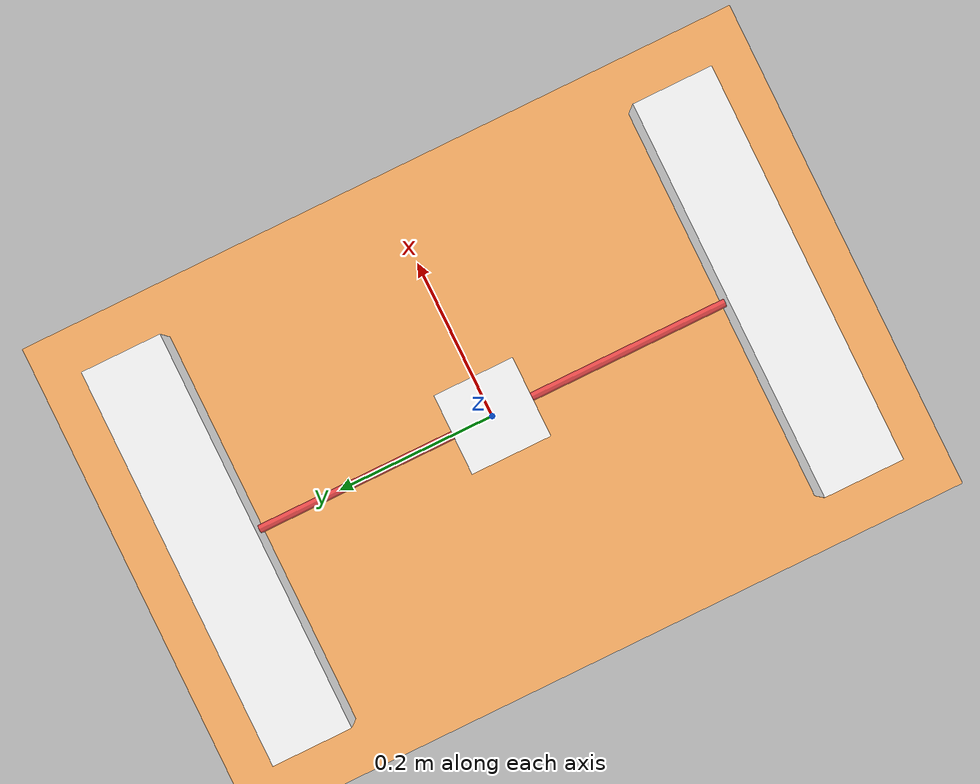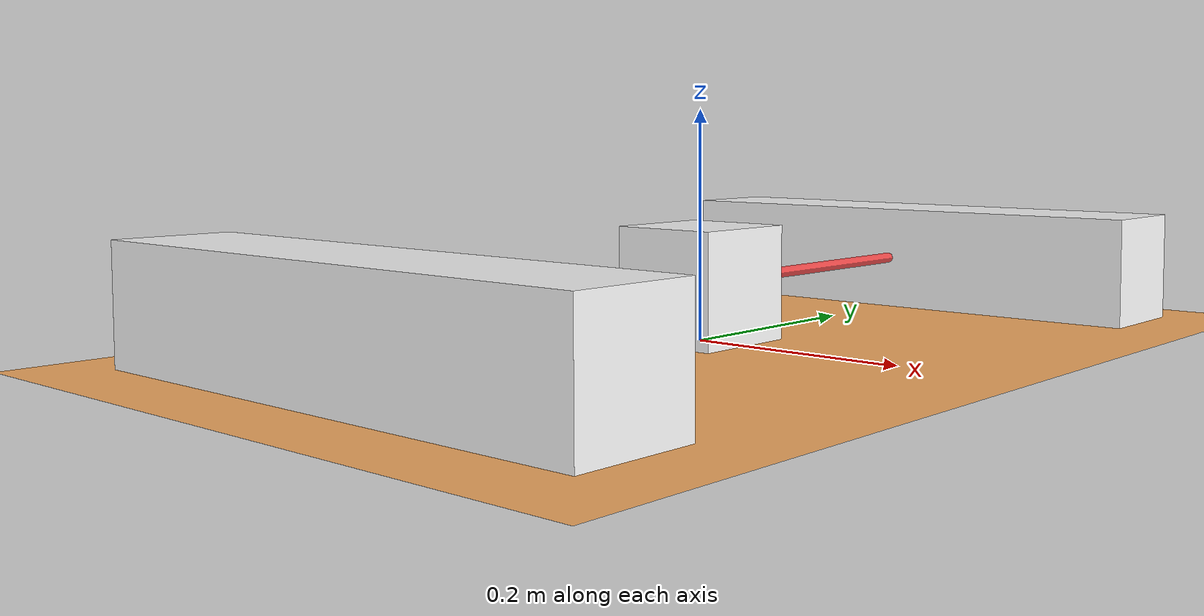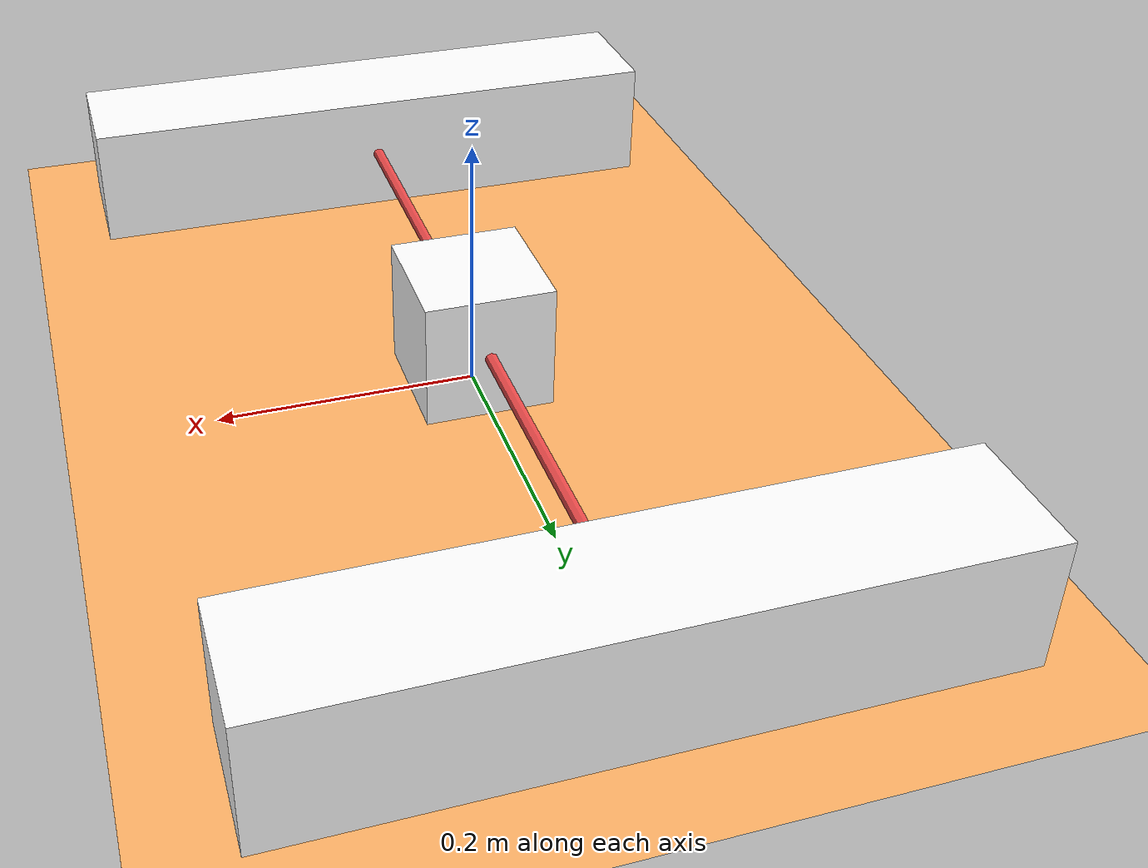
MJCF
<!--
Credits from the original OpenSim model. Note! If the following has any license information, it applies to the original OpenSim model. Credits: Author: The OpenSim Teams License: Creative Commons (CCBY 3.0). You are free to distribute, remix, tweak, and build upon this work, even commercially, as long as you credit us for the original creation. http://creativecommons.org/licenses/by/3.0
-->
<mujoco model="template">
  <!-- This model has been converted from an OpenSim model. Model conversion by MyoConverter https://github.com/MyoHub/myoconverter. This model is licensed under Apache 2.0. -->
  <!-- Note: inertiagrouprange="0 1" means that groups 0-1 will be used to infer masses/inertias, and groups 2-5 are
  only for visualisation (e.g. wrapping objects) !-->
  <compiler inertiafromgeom="auto" angle="radian" balanceinertia="true" boundmass="0.001" boundinertia="0.001" inertiagrouprange="0 1">
    <lengthrange inttotal="50" useexisting="true"/>
  </compiler>
  <option collision="predefined"/>
  <visual>
    <scale framelength="0.5" framewidth="0.01"/>
  </visual>
  <default>
    <joint limited="true" damping="0.05" armature="0.00001" stiffness="0"/>
    <geom rgba="0.8 0.6 .4 1" margin="0.001"/>
    <site size="0.001"/>
    <tendon width="0.005" rgba=".95 .3 .3 1" limited="false"/>
    <default class="muscle">
      <muscle ctrllimited="true" ctrlrange="0 1" scale="200"/>
    </default>
    <default class="motor">
      <general gainprm="5 0 0 0 0 0 0 0 0 0"/>
    </default>
  </default>
  <option timestep="0.002"/>
  <!-- nuser_jnt=1, the parameter is used to store default value of the joint, and nkey=1 to store keyframe with
   default joint positions set !-->
  <size njmax="1000" nconmax="400" nuser_jnt="1" nkey="1"/>
  <worldbody>
    <!-- The converter script assumes a body named 'ground' exists as a child element of worldbody -->
    <body name="ground" euler="1.571 0 0">
      <geom name="ground-plane" pos="0 0 0" euler="-1.571 0 0" size="10 10 0.125" type="plane" rgba="1.0 0.7 0.4 1.0" condim="3"/>
      <geom name="ground_geom_2" type="mesh" pos="0 0.050000000000000003 0.34999999999999998" euler="-0 0 -0" mesh="ground_geom_2_block" rgba="1 1 1 1" group="0"/>
      <geom name="ground_geom_3" type="mesh" pos="0 0.050000000000000003 -0.34999999999999998" euler="-0 0 -0" mesh="ground_geom_3_block" rgba="1 1 1 1" group="0"/>
      <site name="muscle1_muscle1-point1" pos="0 0.050000000000000003 -0.34999999999999998"/>
      <site name="muscle2_muscle2-point1" pos="0 0.050000000000000003 0.34999999999999998"/>
    </body>
    <light directional="true"/>
    <body name="block" pos="0 1.11e-17 0.05" euler="1.571 0 0">
      <inertial mass="20" pos="0 0 0" fullinertia="0.13333300000000001 0.13333300000000001 0.13333300000000001 0 0 0"/>
      <geom name="block_geom_1" type="mesh" mesh="block_geom_1_block" rgba="1 1 1 1" group="0"/>
      <joint name="block_tz" range="-0.1 0.1" limited="true" user="0.0" ref="0" type="slide" axis="-3.673e-06 0 1" damping="0" stiffness="0"/>
      <site name="muscle1_muscle1-point2" pos="0 0 -0.050000000000000003"/>
      <site name="muscle2_muscle2-point2" pos="0 0 0.050000000000000003"/>
    </body>
  </worldbody>
  <asset>
    <texture type="skybox" builtin="gradient" rgb1="1 1 1" rgb2="0.6 0.8 1" width="256" height="256"/>
    <mesh name="ground_geom_2_block" file="Geometry/block.stl" scale="5 1 1"/>
    <mesh name="ground_geom_3_block" file="Geometry/block.stl" scale="5 1 1"/>
    <mesh name="block_geom_1_block" file="Geometry/block.stl" scale="1 1 1"/>
  </asset>
  <tendon>
    <!-- Leave this comment here to make 'tendon' element pretty printed !-->
    <spatial name="muscle1_tendon">
      <site site="muscle1_muscle1-point1"/>
      <site site="muscle1_muscle1-point2"/>
    </spatial>
    <spatial name="muscle2_tendon">
      <site site="muscle2_muscle2-point1"/>
      <site site="muscle2_muscle2-point2"/>
    </spatial>
  </tendon>
  <actuator>
    <!-- Leave this comment here to make 'actuator' element pretty printed !-->
    <muscle name="muscle1" lengthrange="0.01 1" force="1000" tendon="muscle1_tendon" class="muscle" timeconst="0.015 0.05"/>
    <muscle name="muscle2" lengthrange="0.01 1" force="1000" tendon="muscle2_tendon" class="muscle" timeconst="0.015 0.05"/>
  </actuator>
  <equality>
    <!-- Leave this comment here to make 'equality' element pretty printed !-->
  </equality>
  <contact>
    <!-- Leave this comment here to make 'contact' element pretty printed !-->
    <pair geom1="ground-plane" geom2="block_geom_1"/>
  </contact>
  <keyframe>
    <key name="default-pose" qpos="0"/>
  </keyframe>
</mujoco>
